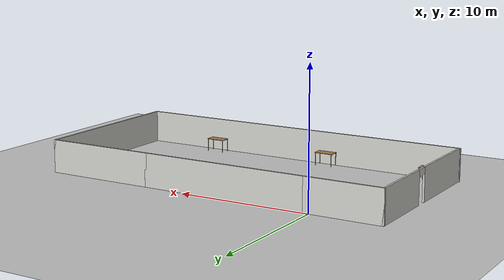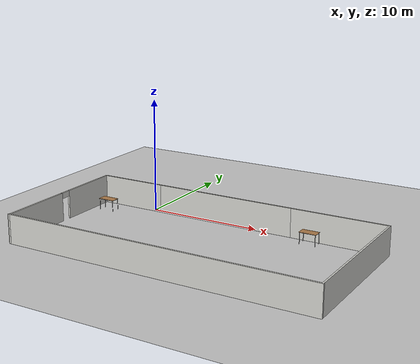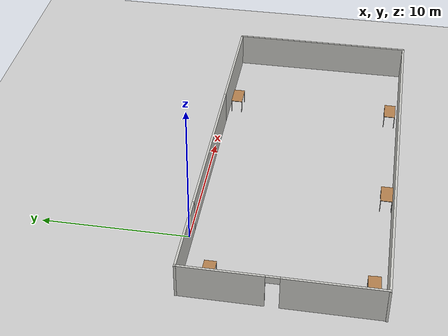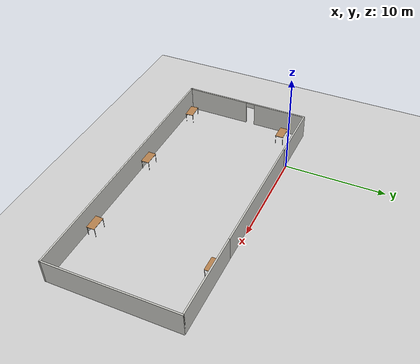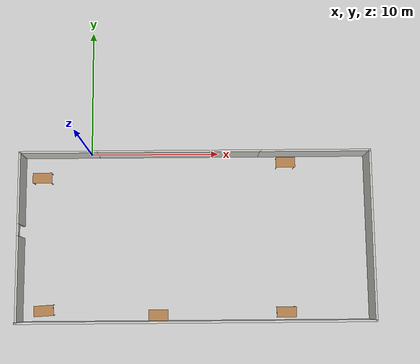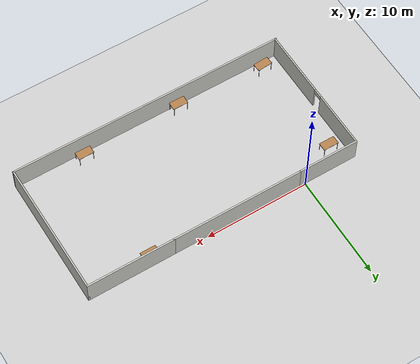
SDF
<sdf version="1.6">
 <world name="default">
  <plugin name="project1" filename="libproject1.so"/>
  <light name="sun" type="directional">
   <pose>0 0 10 0 -0 0</pose>
   <diffuse>0.8 0.8 0.8 1</diffuse>
   <specular>0.2 0.2 0.2 1</specular>
   <attenuation>
    <range>1000</range>
    <constant>0.9</constant>
    <linear>0.01</linear>
    <quadratic>0.001</quadratic>
   </attenuation>
   <direction>-0.5 0.1 -0.9</direction>
  </light>
  <model name="ground_plane">
   <static>1</static>
   <link name="link">
    <collision name="collision">
     <geometry><plane><normal>0 0 1</normal><size>100 100</size></plane></geometry>
     <surface><friction><ode><mu>100</mu><mu2>50</mu2></ode></friction></surface>
    </collision>
    <visual name="visual">
     <cast_shadows>0</cast_shadows>
     <geometry><plane><normal>0 0 1</normal><size>100 100</size></plane></geometry>
     <material>
      <script><uri>file://media/materials/scripts/gazebo.material</uri><name>Gazebo/Grey</name></script>
     </material>
    </visual>
   </link>
  </model>
  <gravity>0 0 -9.8</gravity>
  <magnetic_field>6e-06 2.3e-05 -4.2e-05</magnetic_field>
  <atmosphere type="adiabatic"/>
  <physics name="default_physics" default="0" type="ode">
   <max_step_size>0.001</max_step_size>
   <real_time_factor>1</real_time_factor>
   <real_time_update_rate>1000</real_time_update_rate>
  </physics>
  <scene><ambient>0.4 0.4 0.4 1</ambient><background>0.7 0.7 0.7 1</background><shadows>1</shadows></scene>
  <spherical_coordinates>
   <surface_model>EARTH_WGS84</surface_model>
   <latitude_deg>0</latitude_deg>
   <longitude_deg>0</longitude_deg>
   <elevation>0</elevation>
   <heading_deg>0</heading_deg>
  </spherical_coordinates>
  <model name="table_0">
   <static>1</static>
   <link name="link">
    <collision name="surface">
     <pose>0 0 1 0 -0 0</pose>
     <geometry><box><size>1.5 0.8 0.03</size></box></geometry>
     <surface><friction><ode><mu>0.6</mu><mu2>0.6</mu2></ode></friction></surface>
    </collision>
    <visual name="visual1">
     <pose>0 0 1 0 -0 0</pose>
     <geometry><box><size>1.5 0.8 0.03</size></box></geometry>
     <material>
      <script><uri>file://media/materials/scripts/gazebo.material</uri><name>Gazebo/Wood</name></script>
     </material>
    </visual>
    <collision name="front_left_leg">
     <pose>0.68 0.38 0.5 0 -0 0</pose>
     <geometry><cylinder><radius>0.02</radius><length>1</length></cylinder></geometry>
    </collision>
    <visual name="front_left_leg">
     <pose>0.68 0.38 0.5 0 -0 0</pose>
     <geometry><cylinder><radius>0.02</radius><length>1</length></cylinder></geometry>
     <material>
      <script><uri>file://media/materials/scripts/gazebo.material</uri><name>Gazebo/Grey</name></script>
     </material>
    </visual>
    <collision name="front_right_leg">
     <pose>0.68 -0.38 0.5 0 -0 0</pose>
     <geometry><cylinder><radius>0.02</radius><length>1</length></cylinder></geometry>
    </collision>
    <visual name="front_right_leg">
     <pose>0.68 -0.38 0.5 0 -0 0</pose>
     <geometry><cylinder><radius>0.02</radius><length>1</length></cylinder></geometry>
     <material>
      <script><uri>file://media/materials/scripts/gazebo.material</uri><name>Gazebo/Grey</name></script>
     </material>
    </visual>
    <collision name="back_right_leg">
     <pose>-0.68 -0.38 0.5 0 -0 0</pose>
     <geometry><cylinder><radius>0.02</radius><length>1</length></cylinder></geometry>
    </collision>
    <visual name="back_right_leg">
     <pose>-0.68 -0.38 0.5 0 -0 0</pose>
     <geometry><cylinder><radius>0.02</radius><length>1</length></cylinder></geometry>
     <material>
      <script><uri>file://media/materials/scripts/gazebo.material</uri><name>Gazebo/Grey</name></script>
     </material>
    </visual>
    <collision name="back_left_leg">
     <pose>-0.68 0.38 0.5 0 -0 0</pose>
     <geometry><cylinder><radius>0.02</radius><length>1</length></cylinder></geometry>
    </collision>
    <visual name="back_left_leg">
     <pose>-0.68 0.38 0.5 0 -0 0</pose>
     <geometry><cylinder><radius>0.02</radius><length>1</length></cylinder></geometry>
     <material>
      <script><uri>file://media/materials/scripts/gazebo.material</uri><name>Gazebo/Grey</name></script>
     </material>
    </visual>
   </link>
   <pose>-3.73384 -1.95117 0 0 -0 0</pose>
  </model>
  <model name="classroom">
   <pose>8.12459 -6.59825 0 0 -0 0</pose>
   <link name="Wall_10">
    <pose>-13.375 0 0 0 0 -1.5708</pose>
    <visual name="Wall_10_Visual_0">
     <pose>-3.72559 0 1.25 0 -0 0</pose>
     <geometry><box><size>5.54883 0.15 2.5</size></box></geometry>
     <material>
      <script><uri>file://media/materials/scripts/gazebo.material</uri><name>Gazebo/CeilingTiled</name></script>
      <ambient>1 1 1 1</ambient>
     </material>
     <meta><layer>0</layer></meta>
    </visual>
    <collision name="Wall_10_Collision_0">
     <geometry><box><size>5.54883 0.15 2.5</size></box></geometry>
     <pose>-3.72559 0 1.25 0 -0 0</pose>
    </collision>
    <visual name="Wall_10_Visual_1">
     <pose>3.22441 0 1.25 0 -0 0</pose>
     <geometry><box><size>6.55117 0.15 2.5</size></box></geometry>
     <material>
      <script><uri>file://media/materials/scripts/gazebo.material</uri><name>Gazebo/CeilingTiled</name></script>
      <ambient>1 1 1 1</ambient>
     </material>
     <meta><layer>0</layer></meta>
    </visual>
    <collision name="Wall_10_Collision_1">
     <geometry><box><size>6.55117 0.15 2.5</size></box></geometry>
     <pose>3.22441 0 1.25 0 -0 0</pose>
    </collision>
    <visual name="Wall_10_Visual_2">
     <pose>-0.501171 0 2.25 0 -0 0</pose>
     <geometry><box><size>0.9 0.15 0.5</size></box></geometry>
     <material>
      <script><uri>file://media/materials/scripts/gazebo.material</uri><name>Gazebo/CeilingTiled</name></script>
      <ambient>1 1 1 1</ambient>
     </material>
     <meta><layer>0</layer></meta>
    </visual>
    <collision name="Wall_10_Collision_2">
     <geometry><box><size>0.9 0.15 0.5</size></box></geometry>
     <pose>-0.501171 0 2.25 0 -0 0</pose>
    </collision>
   </link>
   <link name="Wall_14">
    <collision name="Wall_14_Collision">
     <geometry><box><size>8.5 0.15 2.5</size></box></geometry>
     <pose>0 0 1.25 0 -0 0</pose>
    </collision>
    <visual name="Wall_14_Visual">
     <pose>0 0 1.25 0 -0 0</pose>
     <geometry><box><size>8.5 0.15 2.5</size></box></geometry>
     <material>
      <script><uri>file://media/materials/scripts/gazebo.material</uri><name>Gazebo/CeilingTiled</name></script>
      <ambient>0.921569 0.807843 0.615686 1</ambient>
     </material>
     <meta><layer>0</layer></meta>
    </visual>
    <pose>9.25 6.425 0 0 -0 0</pose>
   </link>
   <link name="Wall_15">
    <collision name="Wall_15_Collision">
     <geometry><box><size>13 0.15 2.5</size></box></geometry>
     <pose>0 0 1.25 0 -0 0</pose>
    </collision>
    <visual name="Wall_15_Visual">
     <pose>0 0 1.25 0 -0 0</pose>
     <geometry><box><size>13 0.15 2.5</size></box></geometry>
     <material>
      <script><uri>file://media/materials/scripts/gazebo.material</uri><name>Gazebo/CeilingTiled</name></script>
      <ambient>1 1 1 1</ambient>
     </material>
     <meta><layer>0</layer></meta>
    </visual>
    <pose>13.425 0 0 0 0 -1.5708</pose>
   </link>
   <link name="Wall_16">
    <collision name="Wall_16_Collision">
     <geometry><box><size>27 0.15 2.5</size></box></geometry>
     <pose>0 0 1.25 0 -0 0</pose>
    </collision>
    <visual name="Wall_16_Visual">
     <pose>0 0 1.25 0 -0 0</pose>
     <geometry><box><size>27 0.15 2.5</size></box></geometry>
     <material>
      <script><uri>file://media/materials/scripts/gazebo.material</uri><name>Gazebo/CeilingTiled</name></script>
      <ambient>1 1 1 1</ambient>
     </material>
     <meta><layer>0</layer></meta>
    </visual>
    <pose>0 -6.425 0 0 -0 3.14159</pose>
   </link>
   <link name="Wall_5">
    <collision name="Wall_5_Collision">
     <geometry><box><size>12.75 0.15 2.5</size></box></geometry>
     <pose>0 0 1.25 0 -0 0</pose>
    </collision>
    <visual name="Wall_5_Visual">
     <pose>0 0 1.25 0 -0 0</pose>
     <geometry><box><size>12.75 0.15 2.5</size></box></geometry>
     <material>
      <script><uri>file://media/materials/scripts/gazebo.material</uri><name>Gazebo/CeilingTiled</name></script>
      <ambient>0.921569 0.807843 0.615686 1</ambient>
     </material>
     <meta><layer>0</layer></meta>
    </visual>
    <pose>-1.225 6.425 0 0 -0 0</pose>
   </link>
   <link name="Wall_9">
    <collision name="Wall_9_Collision">
     <geometry><box><size>6 0.15 2.5</size></box></geometry>
     <pose>0 0 1.25 0 -0 0</pose>
    </collision>
    <visual name="Wall_9_Visual">
     <pose>0 0 1.25 0 -0 0</pose>
     <geometry><box><size>6 0.15 2.5</size></box></geometry>
     <material>
      <script><uri>file://media/materials/scripts/gazebo.material</uri><name>Gazebo/CeilingTiled</name></script>
      <ambient>0.921569 0.807843 0.615686 1</ambient>
     </material>
     <meta><layer>0</layer></meta>
    </visual>
    <pose>-10.45 6.425 0 0 -0 3.14159</pose>
   </link>
   <static>1</static>
  </model>
  <model name="table">
   <static>1</static>
   <link name="link">
    <collision name="surface">
     <pose>0 0 1 0 -0 0</pose>
     <geometry><box><size>1.5 0.8 0.03</size></box></geometry>
     <surface><friction><ode><mu>0.6</mu><mu2>0.6</mu2></ode></friction></surface>
    </collision>
    <visual name="visual1">
     <pose>0 0 1 0 -0 0</pose>
     <geometry><box><size>1.5 0.8 0.03</size></box></geometry>
     <material>
      <script><uri>file://media/materials/scripts/gazebo.material</uri><name>Gazebo/Wood</name></script>
     </material>
    </visual>
    <collision name="front_left_leg">
     <pose>0.68 0.38 0.5 0 -0 0</pose>
     <geometry><cylinder><radius>0.02</radius><length>1</length></cylinder></geometry>
    </collision>
    <visual name="front_left_leg">
     <pose>0.68 0.38 0.5 0 -0 0</pose>
     <geometry><cylinder><radius>0.02</radius><length>1</length></cylinder></geometry>
     <material>
      <script><uri>file://media/materials/scripts/gazebo.material</uri><name>Gazebo/Grey</name></script>
     </material>
    </visual>
    <collision name="front_right_leg">
     <pose>0.68 -0.38 0.5 0 -0 0</pose>
     <geometry><cylinder><radius>0.02</radius><length>1</length></cylinder></geometry>
    </collision>
    <visual name="front_right_leg">
     <pose>0.68 -0.38 0.5 0 -0 0</pose>
     <geometry><cylinder><radius>0.02</radius><length>1</length></cylinder></geometry>
     <material>
      <script><uri>file://media/materials/scripts/gazebo.material</uri><name>Gazebo/Grey</name></script>
     </material>
    </visual>
    <collision name="back_right_leg">
     <pose>-0.68 -0.38 0.5 0 -0 0</pose>
     <geometry><cylinder><radius>0.02</radius><length>1</length></cylinder></geometry>
    </collision>
    <visual name="back_right_leg">
     <pose>-0.68 -0.38 0.5 0 -0 0</pose>
     <geometry><cylinder><radius>0.02</radius><length>1</length></cylinder></geometry>
     <material>
      <script><uri>file://media/materials/scripts/gazebo.material</uri><name>Gazebo/Grey</name></script>
     </material>
    </visual>
    <collision name="back_left_leg">
     <pose>-0.68 0.38 0.5 0 -0 0</pose>
     <geometry><cylinder><radius>0.02</radius><length>1</length></cylinder></geometry>
    </collision>
    <visual name="back_left_leg">
     <pose>-0.68 0.38 0.5 0 -0 0</pose>
     <geometry><cylinder><radius>0.02</radius><length>1</length></cylinder></geometry>
     <material>
      <script><uri>file://media/materials/scripts/gazebo.material</uri><name>Gazebo/Grey</name></script>
     </material>
    </visual>
   </link>
   <pose>-3.41965 -12.1472 0 0 -0 0.064285</pose>
  </model>
  <model name="table_1">
   <static>1</static>
   <link name="link">
    <collision name="surface">
     <pose>0 0 1 0 -0 0</pose>
     <geometry><box><size>1.5 0.8 0.03</size></box></geometry>
     <surface><friction><ode><mu>0.6</mu><mu2>0.6</mu2></ode></friction></surface>
    </collision>
    <visual name="visual1">
     <pose>0 0 1 0 -0 0</pose>
     <geometry><box><size>1.5 0.8 0.03</size></box></geometry>
     <material>
      <script><uri>file://media/materials/scripts/gazebo.material</uri><name>Gazebo/Wood</name></script>
     </material>
    </visual>
    <collision name="front_left_leg">
     <pose>0.68 0.38 0.5 0 -0 0</pose>
     <geometry><cylinder><radius>0.02</radius><length>1</length></cylinder></geometry>
    </collision>
    <visual name="front_left_leg">
     <pose>0.68 0.38 0.5 0 -0 0</pose>
     <geometry><cylinder><radius>0.02</radius><length>1</length></cylinder></geometry>
     <material>
      <script><uri>file://media/materials/scripts/gazebo.material</uri><name>Gazebo/Grey</name></script>
     </material>
    </visual>
    <collision name="front_right_leg">
     <pose>0.68 -0.38 0.5 0 -0 0</pose>
     <geometry><cylinder><radius>0.02</radius><length>1</length></cylinder></geometry>
    </collision>
    <visual name="front_right_leg">
     <pose>0.68 -0.38 0.5 0 -0 0</pose>
     <geometry><cylinder><radius>0.02</radius><length>1</length></cylinder></geometry>
     <material>
      <script><uri>file://media/materials/scripts/gazebo.material</uri><name>Gazebo/Grey</name></script>
     </material>
    </visual>
    <collision name="back_right_leg">
     <pose>-0.68 -0.38 0.5 0 -0 0</pose>
     <geometry><cylinder><radius>0.02</radius><length>1</length></cylinder></geometry>
    </collision>
    <visual name="back_right_leg">
     <pose>-0.68 -0.38 0.5 0 -0 0</pose>
     <geometry><cylinder><radius>0.02</radius><length>1</length></cylinder></geometry>
     <material>
      <script><uri>file://media/materials/scripts/gazebo.material</uri><name>Gazebo/Grey</name></script>
     </material>
    </visual>
    <collision name="back_left_leg">
     <pose>-0.68 0.38 0.5 0 -0 0</pose>
     <geometry><cylinder><radius>0.02</radius><length>1</length></cylinder></geometry>
    </collision>
    <visual name="back_left_leg">
     <pose>-0.68 0.38 0.5 0 -0 0</pose>
     <geometry><cylinder><radius>0.02</radius><length>1</length></cylinder></geometry>
     <material>
      <script><uri>file://media/materials/scripts/gazebo.material</uri><name>Gazebo/Grey</name></script>
     </material>
    </visual>
   </link>
   <pose>5.29742 -12.5263 0 0 -0 0</pose>
  </model>
  <model name="table_2">
   <static>1</static>
   <link name="link">
    <collision name="surface">
     <pose>0 0 1 0 -0 0</pose>
     <geometry><box><size>1.5 0.8 0.03</size></box></geometry>
     <surface><friction><ode><mu>0.6</mu><mu2>0.6</mu2></ode></friction></surface>
    </collision>
    <visual name="visual1">
     <pose>0 0 1 0 -0 0</pose>
     <geometry><box><size>1.5 0.8 0.03</size></box></geometry>
     <material>
      <script><uri>file://media/materials/scripts/gazebo.material</uri><name>Gazebo/Wood</name></script>
     </material>
    </visual>
    <collision name="front_left_leg">
     <pose>0.68 0.38 0.5 0 -0 0</pose>
     <geometry><cylinder><radius>0.02</radius><length>1</length></cylinder></geometry>
    </collision>
    <visual name="front_left_leg">
     <pose>0.68 0.38 0.5 0 -0 0</pose>
     <geometry><cylinder><radius>0.02</radius><length>1</length></cylinder></geometry>
     <material>
      <script><uri>file://media/materials/scripts/gazebo.material</uri><name>Gazebo/Grey</name></script>
     </material>
    </visual>
    <collision name="front_right_leg">
     <pose>0.68 -0.38 0.5 0 -0 0</pose>
     <geometry><cylinder><radius>0.02</radius><length>1</length></cylinder></geometry>
    </collision>
    <visual name="front_right_leg">
     <pose>0.68 -0.38 0.5 0 -0 0</pose>
     <geometry><cylinder><radius>0.02</radius><length>1</length></cylinder></geometry>
     <material>
      <script><uri>file://media/materials/scripts/gazebo.material</uri><name>Gazebo/Grey</name></script>
     </material>
    </visual>
    <collision name="back_right_leg">
     <pose>-0.68 -0.38 0.5 0 -0 0</pose>
     <geometry><cylinder><radius>0.02</radius><length>1</length></cylinder></geometry>
    </collision>
    <visual name="back_right_leg">
     <pose>-0.68 -0.38 0.5 0 -0 0</pose>
     <geometry><cylinder><radius>0.02</radius><length>1</length></cylinder></geometry>
     <material>
      <script><uri>file://media/materials/scripts/gazebo.material</uri><name>Gazebo/Grey</name></script>
     </material>
    </visual>
    <collision name="back_left_leg">
     <pose>-0.68 0.38 0.5 0 -0 0</pose>
     <geometry><cylinder><radius>0.02</radius><length>1</length></cylinder></geometry>
    </collision>
    <visual name="back_left_leg">
     <pose>-0.68 0.38 0.5 0 -0 0</pose>
     <geometry><cylinder><radius>0.02</radius><length>1</length></cylinder></geometry>
     <material>
      <script><uri>file://media/materials/scripts/gazebo.material</uri><name>Gazebo/Grey</name></script>
     </material>
    </visual>
   </link>
   <pose>15.04 -12.3613 0 0 -0 0</pose>
  </model>
  <model name="table_3">
   <static>1</static>
   <link name="link">
    <collision name="surface">
     <pose>0 0 1 0 -0 0</pose>
     <geometry><box><size>1.5 0.8 0.03</size></box></geometry>
     <surface><friction><ode><mu>0.6</mu><mu2>0.6</mu2></ode></friction></surface>
    </collision>
    <visual name="visual1">
     <pose>0 0 1 0 -0 0</pose>
     <geometry><box><size>1.5 0.8 0.03</size></box></geometry>
     <material>
      <script><uri>file://media/materials/scripts/gazebo.material</uri><name>Gazebo/Wood</name></script>
     </material>
    </visual>
    <collision name="front_left_leg">
     <pose>0.68 0.38 0.5 0 -0 0</pose>
     <geometry><cylinder><radius>0.02</radius><length>1</length></cylinder></geometry>
    </collision>
    <visual name="front_left_leg">
     <pose>0.68 0.38 0.5 0 -0 0</pose>
     <geometry><cylinder><radius>0.02</radius><length>1</length></cylinder></geometry>
     <material>
      <script><uri>file://media/materials/scripts/gazebo.material</uri><name>Gazebo/Grey</name></script>
     </material>
    </visual>
    <collision name="front_right_leg">
     <pose>0.68 -0.38 0.5 0 -0 0</pose>
     <geometry><cylinder><radius>0.02</radius><length>1</length></cylinder></geometry>
    </collision>
    <visual name="front_right_leg">
     <pose>0.68 -0.38 0.5 0 -0 0</pose>
     <geometry><cylinder><radius>0.02</radius><length>1</length></cylinder></geometry>
     <material>
      <script><uri>file://media/materials/scripts/gazebo.material</uri><name>Gazebo/Grey</name></script>
     </material>
    </visual>
    <collision name="back_right_leg">
     <pose>-0.68 -0.38 0.5 0 -0 0</pose>
     <geometry><cylinder><radius>0.02</radius><length>1</length></cylinder></geometry>
    </collision>
    <visual name="back_right_leg">
     <pose>-0.68 -0.38 0.5 0 -0 0</pose>
     <geometry><cylinder><radius>0.02</radius><length>1</length></cylinder></geometry>
     <material>
      <script><uri>file://media/materials/scripts/gazebo.material</uri><name>Gazebo/Grey</name></script>
     </material>
    </visual>
    <collision name="back_left_leg">
     <pose>-0.68 0.38 0.5 0 -0 0</pose>
     <geometry><cylinder><radius>0.02</radius><length>1</length></cylinder></geometry>
    </collision>
    <visual name="back_left_leg">
     <pose>-0.68 0.38 0.5 0 -0 0</pose>
     <geometry><cylinder><radius>0.02</radius><length>1</length></cylinder></geometry>
     <material>
      <script><uri>file://media/materials/scripts/gazebo.material</uri><name>Gazebo/Grey</name></script>
     </material>
    </visual>
   </link>
   <pose>15.2174 -0.837761 0 0 -0 0</pose>
  </model>
 </world>
</sdf>
